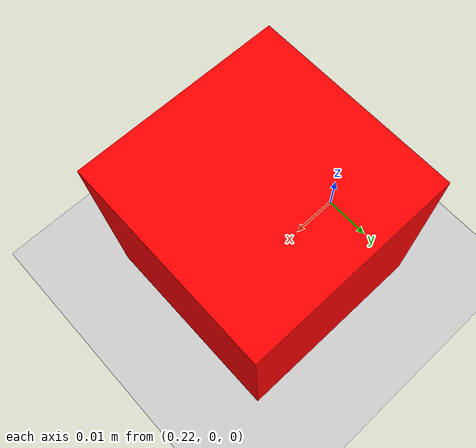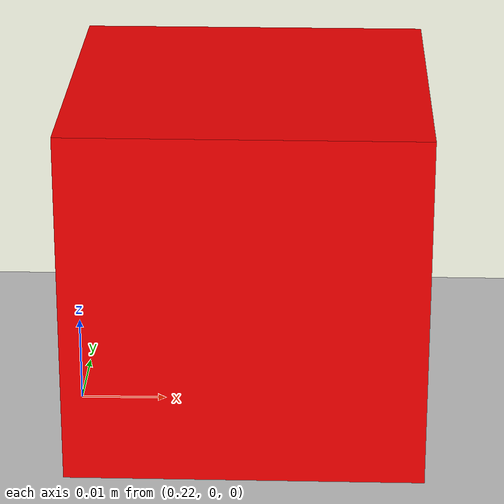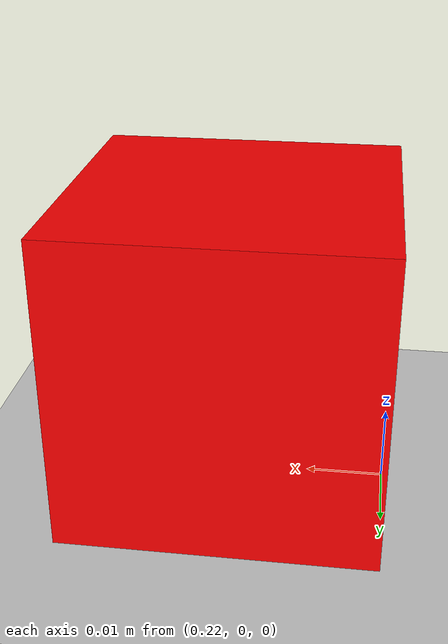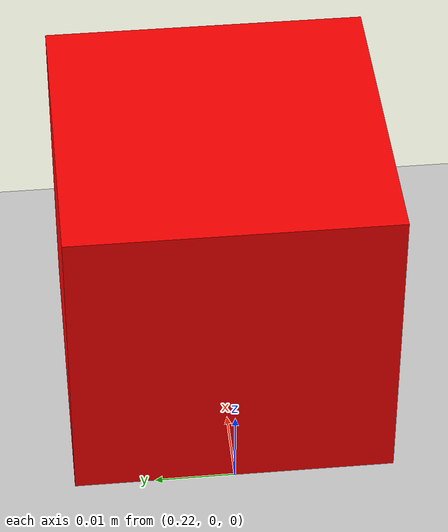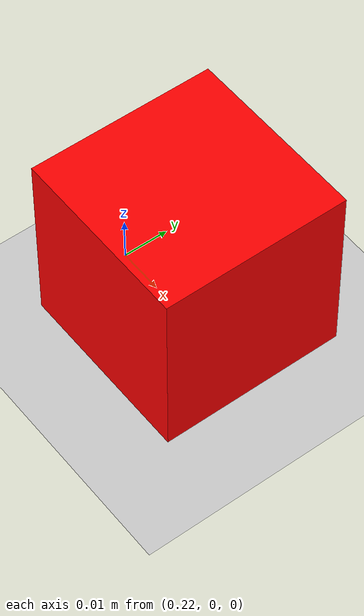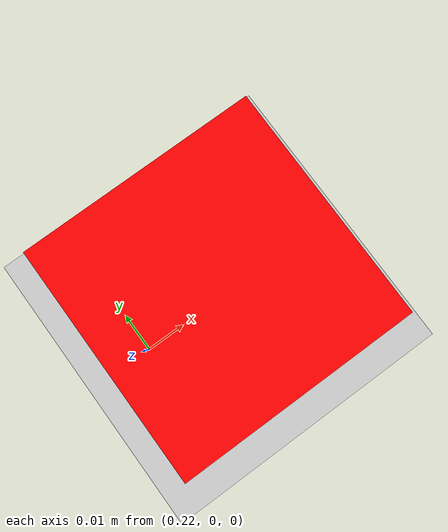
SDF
<sdf version='1.6'>
  <world name='empty'>
    <physics name='1ms' type='ignored'>
      <max_step_size>0.005</max_step_size>
      <real_time_factor>1</real_time_factor>
      <real_time_update_rate>500</real_time_update_rate>
    </physics>
    <plugin name='gz::sim::systems::Physics' filename='gz-sim-physics-system'/>
    <plugin name='gz::sim::systems::UserCommands' filename='gz-sim-user-commands-system'/>
    <plugin name='gz::sim::systems::SceneBroadcaster' filename='gz-sim-scene-broadcaster-system'/>
    <plugin name='gz::sim::systems::Contact' filename='gz-sim-contact-system'/>

    <gravity>0 0 -9.8</gravity>
    <scene>
      <ambient>0.4 0.4 0.4 1</ambient>
      <background>0.7 0.7 0.7 1</background>
      <shadows>true</shadows>
    </scene>
    <model name='ground_plane'>
      <static>true</static>
      <link name='link'>
        <collision name='collision'>
          <geometry><plane><normal>0 0 1</normal><size>100 100</size></plane></geometry>
        </collision>
        <visual name='visual'>
          <geometry><plane><normal>0 0 1</normal><size>100 100</size></plane></geometry>
          <material><ambient>0.8 0.8 0.8 1</ambient><diffuse>0.8 0.8 0.8 1</diffuse></material>
        </visual>
      </link>
    </model>

    <model name='pick_cube'>
      <pose>0.24 0 0.02 0 0 0</pose>
      <link name='link'>
        <inertial>
          <mass>0.005</mass>
          <inertia><ixx>0.00001</ixx><iyy>0.00001</iyy><izz>0.00001</izz></inertia>
        </inertial>
        <collision name='collision'>
          <geometry><box><size>0.04 0.04 0.04</size></box></geometry>
          <surface>
            <friction>
              <ode>
                <mu>1000.0</mu>
                <mu2>1000.0</mu2>
              </ode>
            </friction>
            <contact>
              <ode>
                <min_depth>0.002</min_depth>
                <kp>1e5</kp>
              </ode>
            </contact>
          </surface>
        </collision>
        <visual name='visual'>
          <geometry><box><size>0.04 0.04 0.04</size></box></geometry>
          <material><ambient>1 0 0 1</ambient><diffuse>1 0 0 1</diffuse></material>
        </visual>
      </link>
    </model>

    <light name='sun' type='directional'>
      <pose>0 0 10 0 0 0</pose>
      <cast_shadows>true</cast_shadows>
      <intensity>1</intensity>
      <direction>-0.5 0.1 -0.9</direction>
      <diffuse>0.8 0.8 0.8 1</diffuse>
      <specular>0.2 0.2 0.2 1</specular>
    </light>
  </world>
</sdf>
